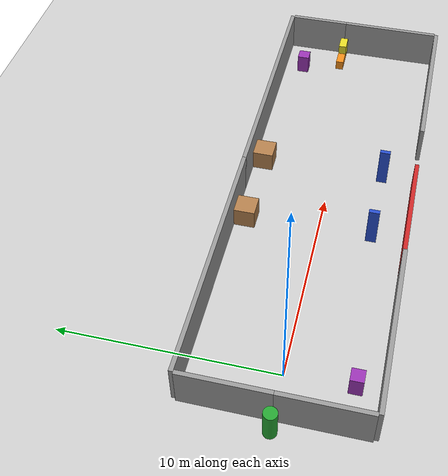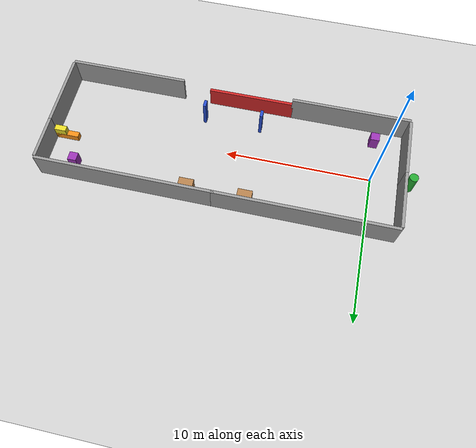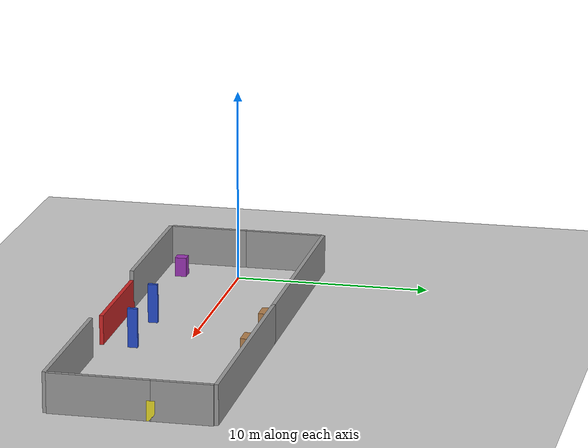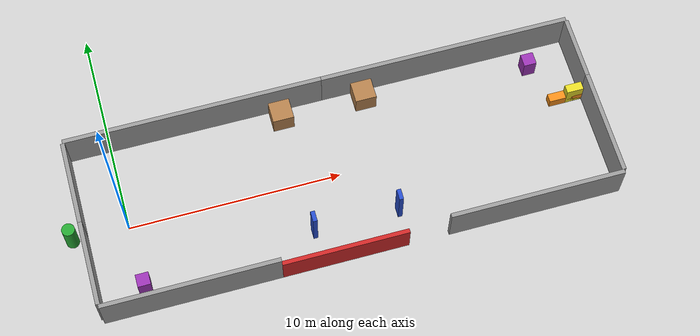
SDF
<?xml version="1.0" ?>
<sdf version="1.6">
  <world name="hallway_world">

    <!-- Physics -->
    <physics name="default_physics" default="0" type="ode">
      <max_step_size>0.001</max_step_size>
      <real_time_factor>1.0</real_time_factor>
      <real_time_update_rate>1000</real_time_update_rate>
    </physics>

    <!-- Lighting -->
    <include>
      <uri>model://sun</uri>
    </include>

    <!-- Ground Plane -->
    <model name="ground_plane">
      <static>true</static>
      <link name="link">
        <collision name="collision">
          <geometry>
            <plane>
              <normal>0 0 1</normal>
              <size>100 10</size>
            </plane>
          </geometry>
        </collision>
        <visual name="visual">
          <geometry>
            <plane>
              <normal>0 0 1</normal>
              <size>100 10</size>
            </plane>
          </geometry>
          <material>
            <script>
              <uri>file://media/materials/scripts/gazebo.material</uri>
              <name>Gazebo/Concrete</name>
            </script>
          </material>
        </visual>
      </link>
    </model>

    <!-- North Wall - Left Section -->
    <model name="north_wall_left">
      <static>true</static>
      <pose>4.1 4.1 1 0 0 0</pose>
      <link name="link">
        <collision name="collision">
          <geometry>
            <box>
              <size>12.2 0.2 2</size>
            </box>
          </geometry>
        </collision>
        <visual name="visual">
          <geometry>
            <box>
              <size>12.2 0.2 2</size>
            </box>
          </geometry>
          <material>
            <script>
              <uri>file://media/materials/scripts/gazebo.material</uri>
              <name>Gazebo/Grey</name>
            </script>
          </material>
        </visual>
      </link>
    </model>

    <!-- North Wall - Right Section -->
    <model name="north_wall_right">
      <static>true</static>
      <pose>16.1 4.1 1 0 0 0</pose>
      <link name="link">
        <collision name="collision">
          <geometry>
            <box>
              <size>12.2 0.2 2</size>
            </box>
          </geometry>
        </collision>
        <visual name="visual">
          <geometry>
            <box>
              <size>12.2 0.2 2</size>
            </box>
          </geometry>
          <material>
            <script>
              <uri>file://media/materials/scripts/gazebo.material</uri>
              <name>Gazebo/Grey</name>
            </script>
          </material>
        </visual>
      </link>
    </model>

    <!-- North Wall - Corner Protrusion Left -->
    <model name="north_corner_left">
      <static>true</static>
      <pose>8.1 3.5 0.5 0 0 0</pose>
      <link name="link">
        <collision name="collision">
          <geometry>
            <box>
              <size>1 1 1</size>
            </box>
          </geometry>
        </collision>
        <visual name="visual">
          <geometry>
            <box>
              <size>1 1 1</size>
            </box>
          </geometry>
          <material>
            <script>
              <uri>file://media/materials/scripts/gazebo.material</uri>
              <name>Gazebo/Wood</name>
            </script>
          </material>
        </visual>
      </link>
    </model>

    <!-- North Wall - Corner Protrusion Right -->
    <model name="north_corner_right">
      <static>true</static>
      <pose>12.1 3.5 0.5 0 0 0</pose>
      <link name="link">
        <collision name="collision">
          <geometry>
            <box>
              <size>1 1 1</size>
            </box>
          </geometry>
        </collision>
        <visual name="visual">
          <geometry>
            <box>
              <size>1 1 1</size>
            </box>
          </geometry>
          <material>
            <script>
              <uri>file://media/materials/scripts/gazebo.material</uri>
              <name>Gazebo/Wood</name>
            </script>
          </material>
        </visual>
      </link>
    </model>

    <!-- South Wall - Left Section -->
    <model name="south_wall_left">
      <static>true</static>
      <pose>2.1 -4.1 1 0 0 0</pose>
      <link name="link">
        <collision name="collision">
          <geometry>
            <box>
              <size>8.2 0.2 2</size>
            </box>
          </geometry>
        </collision>
        <visual name="visual">
          <geometry>
            <box>
              <size>8.2 0.2 2</size>
            </box>
          </geometry>
          <material>
            <script>
              <uri>file://media/materials/scripts/gazebo.material</uri>
              <name>Gazebo/Grey</name>
            </script>
          </material>
        </visual>
      </link>
    </model>

    <!-- South Wall - Middle Section (Lower Height) -->
    <model name="south_wall_middle">
      <static>true</static>
      <pose>9.1 -4.1 0.75 0 0 0</pose>
      <link name="link">
        <collision name="collision">
          <geometry>
            <box>
              <size>6 0.2 1.5</size>
            </box>
          </geometry>
        </collision>
        <visual name="visual">
          <geometry>
            <box>
              <size>6 0.2 1.5</size>
            </box>
          </geometry>
          <material>
            <script>
              <uri>file://media/materials/scripts/gazebo.material</uri>
              <name>Gazebo/Red</name>
            </script>
          </material>
        </visual>
      </link>
    </model>

    <!-- South Wall - Right Section -->
    <model name="south_wall_right">
      <static>true</static>
      <pose>18.1 -4.1 1 0 0 0</pose>
      <link name="link">
        <collision name="collision">
          <geometry>
            <box>
              <size>8.2 0.2 2</size>
            </box>
          </geometry>
        </collision>
        <visual name="visual">
          <geometry>
            <box>
              <size>8.2 0.2 2</size>
            </box>
          </geometry>
          <material>
            <script>
              <uri>file://media/materials/scripts/gazebo.material</uri>
              <name>Gazebo/Grey</name>
            </script>
          </material>
        </visual>
      </link>
    </model>

    <!-- South Wall - Alcove Left -->
    <model name="south_alcove_left">
      <static>true</static>
      <pose>8.1 -2.5 1 0 0 0</pose>
      <link name="link">
        <collision name="collision">
          <geometry>
            <box>
              <size>0.2 0.5 2</size>
            </box>
          </geometry>
        </collision>
        <visual name="visual">
          <geometry>
            <box>
              <size>0.2 0.5 2</size>
            </box>
          </geometry>
          <material>
            <script>
              <uri>file://media/materials/scripts/gazebo.material</uri>
              <name>Gazebo/Blue</name>
            </script>
          </material>
        </visual>
      </link>
    </model>

    <!-- South Wall - Alcove Right -->
    <model name="south_alcove_right">
      <static>true</static>
      <pose>12.1 -2.5 1 0 0 0</pose>
      <link name="link">
        <collision name="collision">
          <geometry>
            <box>
              <size>0.2 0.5 2</size>
            </box>
          </geometry>
        </collision>
        <visual name="visual">
          <geometry>
            <box>
              <size>0.2 0.5 2</size>
            </box>
          </geometry>
          <material>
            <script>
              <uri>file://media/materials/scripts/gazebo.material</uri>
              <name>Gazebo/Blue</name>
            </script>
          </material>
        </visual>
      </link>
    </model>

    <!-- West Wall - Lower Section -->
    <model name="west_wall_lower">
      <static>true</static>
      <pose>-2 -2 1 0 0 0</pose>
      <link name="link">
        <collision name="collision">
          <geometry>
            <box>
              <size>0.2 4 2</size>
            </box>
          </geometry>
        </collision>
        <visual name="visual">
          <geometry>
            <box>
              <size>0.2 4 2</size>
            </box>
          </geometry>
          <material>
            <script>
              <uri>file://media/materials/scripts/gazebo.material</uri>
              <name>Gazebo/Grey</name>
            </script>
          </material>
        </visual>
      </link>
    </model>

    <!-- West Wall - Upper Section -->
    <model name="west_wall_upper">
      <static>true</static>
      <pose>-2 2 1 0 0 0</pose>
      <link name="link">
        <collision name="collision">
          <geometry>
            <box>
              <size>0.2 4 2</size>
            </box>
          </geometry>
        </collision>
        <visual name="visual">
          <geometry>
            <box>
              <size>0.2 4 2</size>
            </box>
          </geometry>
          <material>
            <script>
              <uri>file://media/materials/scripts/gazebo.material</uri>
              <name>Gazebo/Grey</name>
            </script>
          </material>
        </visual>
      </link>
    </model>

    <!-- West Wall - Protruding Element -->
    <model name="west_wall_protrusion">
      <static>true</static>
      <pose>-2.6 0 0.75 0 0 0</pose>
      <link name="link">
        <collision name="collision">
          <geometry>
            <cylinder>
              <radius>0.3</radius>
              <length>1.5</length>
            </cylinder>
          </geometry>
        </collision>
        <visual name="visual">
          <geometry>
            <cylinder>
              <radius>0.3</radius>
              <length>1.5</length>
            </cylinder>
          </geometry>
          <material>
            <script>
              <uri>file://media/materials/scripts/gazebo.material</uri>
              <name>Gazebo/Green</name>
            </script>
          </material>
        </visual>
      </link>
    </model>

    <!-- East Wall - Lower Section -->
    <model name="east_wall_lower">
      <static>true</static>
      <pose>22.2 -1.5 1 0 0 0</pose>
      <link name="link">
        <collision name="collision">
          <geometry>
            <box>
              <size>0.2 5 2</size>
            </box>
          </geometry>
        </collision>
        <visual name="visual">
          <geometry>
            <box>
              <size>0.2 5 2</size>
            </box>
          </geometry>
          <material>
            <script>
              <uri>file://media/materials/scripts/gazebo.material</uri>
              <name>Gazebo/Grey</name>
            </script>
          </material>
        </visual>
      </link>
    </model>

    <!-- East Wall - Upper Section -->
    <model name="east_wall_upper">
      <static>true</static>
      <pose>22.2 2.5 1 0 0 0</pose>
      <link name="link">
        <collision name="collision">
          <geometry>
            <box>
              <size>0.2 3 2</size>
            </box>
          </geometry>
        </collision>
        <visual name="visual">
          <geometry>
            <box>
              <size>0.2 3 2</size>
            </box>
          </geometry>
          <material>
            <script>
              <uri>file://media/materials/scripts/gazebo.material</uri>
              <name>Gazebo/Grey</name>
            </script>
          </material>
        </visual>
      </link>
    </model>

    <!-- East Wall - Stepped Feature -->
    <model name="east_wall_step1">
      <static>true</static>
      <pose>21.8 1 0.5 0 0 0</pose>
      <link name="link">
        <collision name="collision">
          <geometry>
            <box>
              <size>1 0.4 1</size>
            </box>
          </geometry>
        </collision>
        <visual name="visual">
          <geometry>
            <box>
              <size>1 0.4 1</size>
            </box>
          </geometry>
          <material>
            <script>
              <uri>file://media/materials/scripts/gazebo.material</uri>
              <name>Gazebo/Yellow</name>
            </script>
          </material>
        </visual>
      </link>
    </model>

    <!-- East Wall - Stepped Feature 2 -->
    <model name="east_wall_step2">
      <static>true</static>
      <pose>21.4 1 0.25 0 0 0</pose>
      <link name="link">
        <collision name="collision">
          <geometry>
            <box>
              <size>1.8 0.4 0.5</size>
            </box>
          </geometry>
        </collision>
        <visual name="visual">
          <geometry>
            <box>
              <size>1.8 0.4 0.5</size>
            </box>
          </geometry>
          <material>
            <script>
              <uri>file://media/materials/scripts/gazebo.material</uri>
              <name>Gazebo/Orange</name>
            </script>
          </material>
        </visual>
      </link>
    </model>

    <!-- Additional Corner Features for Better Localization -->
    <!-- Corner Feature 1 -->
    <model name="corner_feature_1">
      <static>true</static>
      <pose>20.1 3 0.5 0 0 0</pose>
      <link name="link">
        <collision name="collision">
          <geometry>
            <box>
              <size>0.6 0.6 1</size>
            </box>
          </geometry>
        </collision>
        <visual name="visual">
          <geometry>
            <box>
              <size>0.6 0.6 1</size>
            </box>
          </geometry>
          <material>
            <script>
              <uri>file://media/materials/scripts/gazebo.material</uri>
              <name>Gazebo/Purple</name>
            </script>
          </material>
        </visual>
      </link>
    </model>

    <!-- Corner Feature 2 -->
    <model name="corner_feature_2">
      <static>true</static>
      <pose>0.1 -3 0.5 0 0 0</pose>
      <link name="link">
        <collision name="collision">
          <geometry>
            <box>
              <size>0.6 0.6 1</size>
            </box>
          </geometry>
        </collision>
        <visual name="visual">
          <geometry>
            <box>
              <size>0.6 0.6 1</size>
            </box>
          </geometry>
          <material>
            <script>
              <uri>file://media/materials/scripts/gazebo.material</uri>
              <name>Gazebo/Purple</name>
            </script>
          </material>
        </visual>
      </link>
    </model>

    <!-- Scene -->
    <scene>
      <ambient>0.4 0.4 0.4 1</ambient>
      <background>0.7 0.7 0.7 1</background>
      <shadows>true</shadows>
    </scene>

    <!-- GUI -->
    <gui fullscreen='0'>
      <camera name='user_camera'>
        <pose frame=''>12.1 -15 8 0 0.5 1.57</pose>
        <view_controller>orbit</view_controller>
        <projection_type>perspective</projection_type>
      </camera>
    </gui>

  </world>
</sdf>
